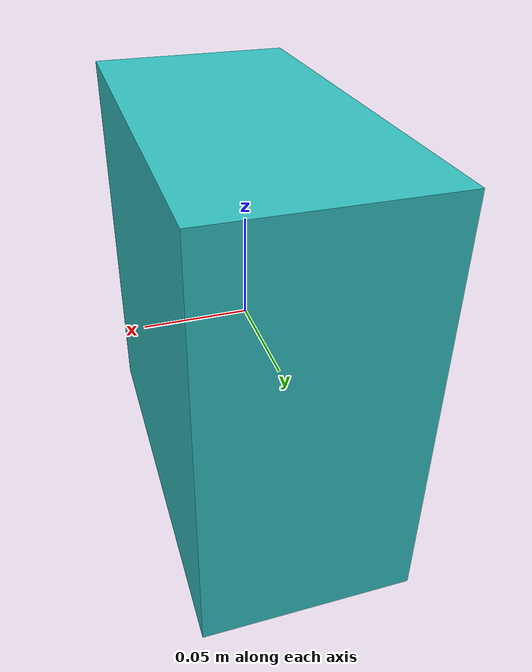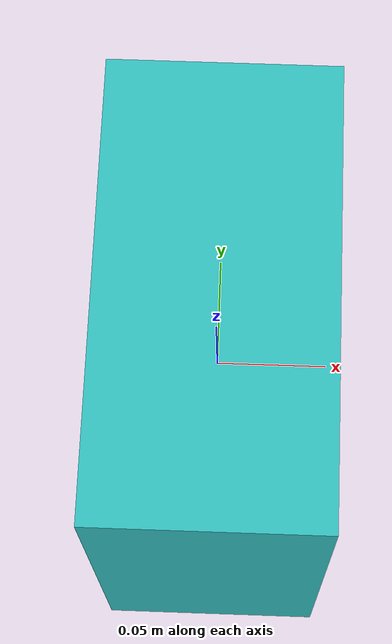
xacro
<?xml version="1.0"?>
<robot xmlns:xacro="http://www.ros.org/wiki/xacro" name="simple_box">
    <link name="object_base_link">
    </link>

    <joint name="object_base_joint" type="fixed">
        <parent link="object_base_link"/>
        <child link="object_link"/>
        <axis xyz="0 0 1" />
        <origin xyz="0 0 0" rpy="0 0 0"/>
    </joint>

    <link name="object_link">
        <inertial>
            <origin xyz="0 0 0" />
            <mass value="1.0" />
            <inertia ixx="1.0" ixy="0.0" ixz="0.0" iyy="100.0" iyz="0.0" izz="1.0" />
        </inertial>
        <visual>
            <origin xyz="0 0 0"/>
            <geometry>
                <box size="0.1 0.2 0.2" />
            </geometry>
        </visual>
    </link>

    <gazebo reference="object_base_link">
        <gravity>0</gravity>
    </gazebo>

    <gazebo reference="object_link">
          <material>Gazebo/Turquoise</material>
    </gazebo>
</robot>
